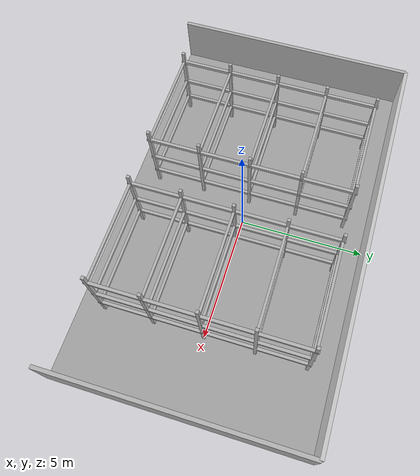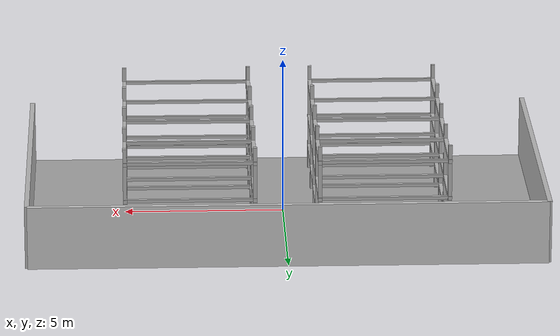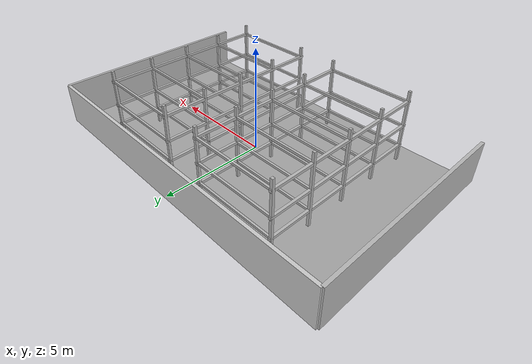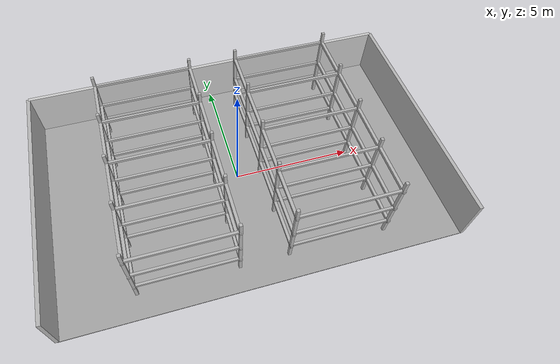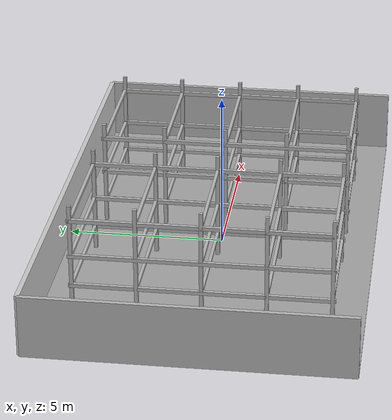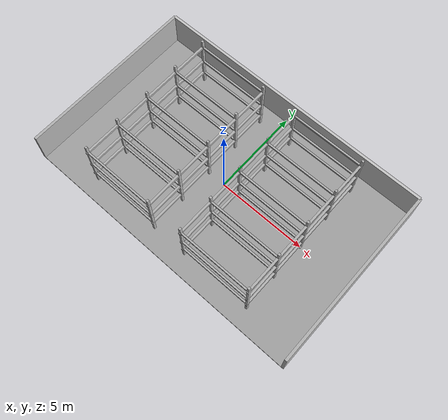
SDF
<?xml version="1.0"?>
<sdf version="1.10">
  <world name="warehouse_world">

    <!-- Lighting -->
    <light name="sun" type="directional">
      <pose>0 0 10 0 0 0</pose>
      <diffuse>0.8 0.8 0.8 1</diffuse>
      <specular>0.2 0.2 0.2 1</specular>
      <direction>-0.5 0.1 -0.9</direction>
    </light>

    <!-- Warehouse floor -->
    <model name="warehouse_floor">
      <static>true</static>
      <link name="floor_link">
        <collision name="floor_collision">
          <geometry>
            <box>
              <size>16 10 0.05</size>
            </box>
          </geometry>
        </collision>
        <visual name="floor_visual">
          <geometry>
            <box>
              <size>16 10 0.05</size>
            </box>
          </geometry>
          <material>
            <ambient>0.65 0.65 0.65 1</ambient>
            <diffuse>0.65 0.65 0.65 1</diffuse>
          </material>
        </visual>
      </link>
    </model>

    <!-- Back wall -->
    <model name="back_wall">
      <static>true</static>
      <pose>0 5 1 0 0 0</pose>
      <link name="wall_link">
        <collision name="wall_collision">
          <geometry>
            <box>
              <size>16 0.15 2</size>
            </box>
          </geometry>
        </collision>
        <visual name="wall_visual">
          <geometry>
            <box>
              <size>16 0.15 2</size>
            </box>
          </geometry>
          <material>
            <ambient>0.8 0.8 0.8 1</ambient>
            <diffuse>0.8 0.8 0.8 1</diffuse>
          </material>
        </visual>
      </link>
    </model>

    <!-- Left wall -->
    <model name="left_wall">
      <static>true</static>
      <pose>-8 0 1 0 0 0</pose>
      <link name="wall_link">
        <collision name="wall_collision">
          <geometry>
            <box>
              <size>0.15 10 2</size>
            </box>
          </geometry>
        </collision>
        <visual name="wall_visual">
          <geometry>
            <box>
              <size>0.15 10 2</size>
            </box>
          </geometry>
        </visual>
      </link>
    </model>

    <!-- Right wall -->
    <model name="right_wall">
      <static>true</static>
      <pose>8 0 1 0 0 0</pose>
      <link name="wall_link">
        <collision name="wall_collision">
          <geometry>
            <box>
              <size>0.15 10 2</size>
            </box>
          </geometry>
        </collision>
        <visual name="wall_visual">
          <geometry>
            <box>
              <size>0.15 10 2</size>
            </box>
          </geometry>
        </visual>
      </link>
    </model>

    <!-- Long warehouse rack row 1 -->
<model name="long_rack_left">
  <static>true</static>
  <pose>-3 0 0 0 0 0</pose>

  <link name="rack_link">

    <!-- Vertical posts along length -->
    <visual name="post_1_front"><pose>-2 -4 1.75 0 0 0</pose><geometry><box><size>0.12 0.12 3.5</size></box></geometry></visual>
    <visual name="post_2_front"><pose>-2 -2 1.75 0 0 0</pose><geometry><box><size>0.12 0.12 3.5</size></box></geometry></visual>
    <visual name="post_3_front"><pose>-2 0 1.75 0 0 0</pose><geometry><box><size>0.12 0.12 3.5</size></box></geometry></visual>
    <visual name="post_4_front"><pose>-2 2 1.75 0 0 0</pose><geometry><box><size>0.12 0.12 3.5</size></box></geometry></visual>
    <visual name="post_5_front"><pose>-2 4 1.75 0 0 0</pose><geometry><box><size>0.12 0.12 3.5</size></box></geometry></visual>

    <visual name="post_1_back"><pose>2 -4 1.75 0 0 0</pose><geometry><box><size>0.12 0.12 3.5</size></box></geometry></visual>
    <visual name="post_2_back"><pose>2 -2 1.75 0 0 0</pose><geometry><box><size>0.12 0.12 3.5</size></box></geometry></visual>
    <visual name="post_3_back"><pose>2 0 1.75 0 0 0</pose><geometry><box><size>0.12 0.12 3.5</size></box></geometry></visual>
    <visual name="post_4_back"><pose>2 2 1.75 0 0 0</pose><geometry><box><size>0.12 0.12 3.5</size></box></geometry></visual>
    <visual name="post_5_back"><pose>2 4 1.75 0 0 0</pose><geometry><box><size>0.12 0.12 3.5</size></box></geometry></visual>

    <!-- Horizontal beams along rack length -->
    <visual name="left_beam_low"><pose>-2 0 0.8 0 0 0</pose><geometry><box><size>0.12 8.2 0.12</size></box></geometry></visual>
    <visual name="left_beam_mid"><pose>-2 0 1.8 0 0 0</pose><geometry><box><size>0.12 8.2 0.12</size></box></geometry></visual>
    <visual name="left_beam_top"><pose>-2 0 3.0 0 0 0</pose><geometry><box><size>0.12 8.2 0.12</size></box></geometry></visual>

    <visual name="right_beam_low"><pose>2 0 0.8 0 0 0</pose><geometry><box><size>0.12 8.2 0.12</size></box></geometry></visual>
    <visual name="right_beam_mid"><pose>2 0 1.8 0 0 0</pose><geometry><box><size>0.12 8.2 0.12</size></box></geometry></visual>
    <visual name="right_beam_top"><pose>2 0 3.0 0 0 0</pose><geometry><box><size>0.12 8.2 0.12</size></box></geometry></visual>

    <!-- Cross beams across rack width -->
    <visual name="cross_low_1"><pose>0 -4 0.8 0 0 0</pose><geometry><box><size>4.1 0.10 0.10</size></box></geometry></visual>
    <visual name="cross_low_2"><pose>0 -2 0.8 0 0 0</pose><geometry><box><size>4.1 0.10 0.10</size></box></geometry></visual>
    <visual name="cross_low_3"><pose>0 0 0.8 0 0 0</pose><geometry><box><size>4.1 0.10 0.10</size></box></geometry></visual>
    <visual name="cross_low_4"><pose>0 2 0.8 0 0 0</pose><geometry><box><size>4.1 0.10 0.10</size></box></geometry></visual>
    <visual name="cross_low_5"><pose>0 4 0.8 0 0 0</pose><geometry><box><size>4.1 0.10 0.10</size></box></geometry></visual>

    <visual name="cross_mid_1"><pose>0 -4 1.8 0 0 0</pose><geometry><box><size>4.1 0.10 0.10</size></box></geometry></visual>
    <visual name="cross_mid_2"><pose>0 -2 1.8 0 0 0</pose><geometry><box><size>4.1 0.10 0.10</size></box></geometry></visual>
    <visual name="cross_mid_3"><pose>0 0 1.8 0 0 0</pose><geometry><box><size>4.1 0.10 0.10</size></box></geometry></visual>
    <visual name="cross_mid_4"><pose>0 2 1.8 0 0 0</pose><geometry><box><size>4.1 0.10 0.10</size></box></geometry></visual>
    <visual name="cross_mid_5"><pose>0 4 1.8 0 0 0</pose><geometry><box><size>4.1 0.10 0.10</size></box></geometry></visual>

    <visual name="cross_top_1"><pose>0 -4 3.0 0 0 0</pose><geometry><box><size>4.1 0.10 0.10</size></box></geometry></visual>
    <visual name="cross_top_2"><pose>0 -2 3.0 0 0 0</pose><geometry><box><size>4.1 0.10 0.10</size></box></geometry></visual>
    <visual name="cross_top_3"><pose>0 0 3.0 0 0 0</pose><geometry><box><size>4.1 0.10 0.10</size></box></geometry></visual>
    <visual name="cross_top_4"><pose>0 2 3.0 0 0 0</pose><geometry><box><size>4.1 0.10 0.10</size></box></geometry></visual>
    <visual name="cross_top_5"><pose>0 4 3.0 0 0 0</pose><geometry><box><size>4.1 0.10 0.10</size></box></geometry></visual>

    <collision name="rack_collision">
      <pose>0 0 1.75 0 0 0</pose>
      <geometry>
        <box>
          <size>4.3 8.4 3.5</size>
        </box>
      </geometry>
    </collision>

  </link>
</model>

<!-- Long warehouse rack row 2: identical parallel rack -->
<model name="long_rack_right">
  <static>true</static>
  <pose>3 0 0 0 0 0</pose>

  <link name="rack_link">

    <!-- Vertical posts along length -->
    <visual name="post_1_front"><pose>-2 -4 1.75 0 0 0</pose><geometry><box><size>0.12 0.12 3.5</size></box></geometry></visual>
    <visual name="post_2_front"><pose>-2 -2 1.75 0 0 0</pose><geometry><box><size>0.12 0.12 3.5</size></box></geometry></visual>
    <visual name="post_3_front"><pose>-2 0 1.75 0 0 0</pose><geometry><box><size>0.12 0.12 3.5</size></box></geometry></visual>
    <visual name="post_4_front"><pose>-2 2 1.75 0 0 0</pose><geometry><box><size>0.12 0.12 3.5</size></box></geometry></visual>
    <visual name="post_5_front"><pose>-2 4 1.75 0 0 0</pose><geometry><box><size>0.12 0.12 3.5</size></box></geometry></visual>

    <visual name="post_1_back"><pose>2 -4 1.75 0 0 0</pose><geometry><box><size>0.12 0.12 3.5</size></box></geometry></visual>
    <visual name="post_2_back"><pose>2 -2 1.75 0 0 0</pose><geometry><box><size>0.12 0.12 3.5</size></box></geometry></visual>
    <visual name="post_3_back"><pose>2 0 1.75 0 0 0</pose><geometry><box><size>0.12 0.12 3.5</size></box></geometry></visual>
    <visual name="post_4_back"><pose>2 2 1.75 0 0 0</pose><geometry><box><size>0.12 0.12 3.5</size></box></geometry></visual>
    <visual name="post_5_back"><pose>2 4 1.75 0 0 0</pose><geometry><box><size>0.12 0.12 3.5</size></box></geometry></visual>

    <!-- Horizontal beams along rack length -->
    <visual name="left_beam_low"><pose>-2 0 0.8 0 0 0</pose><geometry><box><size>0.12 8.2 0.12</size></box></geometry></visual>
    <visual name="left_beam_mid"><pose>-2 0 1.8 0 0 0</pose><geometry><box><size>0.12 8.2 0.12</size></box></geometry></visual>
    <visual name="left_beam_top"><pose>-2 0 3.0 0 0 0</pose><geometry><box><size>0.12 8.2 0.12</size></box></geometry></visual>

    <visual name="right_beam_low"><pose>2 0 0.8 0 0 0</pose><geometry><box><size>0.12 8.2 0.12</size></box></geometry></visual>
    <visual name="right_beam_mid"><pose>2 0 1.8 0 0 0</pose><geometry><box><size>0.12 8.2 0.12</size></box></geometry></visual>
    <visual name="right_beam_top"><pose>2 0 3.0 0 0 0</pose><geometry><box><size>0.12 8.2 0.12</size></box></geometry></visual>

    <!-- Cross beams across rack width -->
    <visual name="cross_low_1"><pose>0 -4 0.8 0 0 0</pose><geometry><box><size>4.1 0.10 0.10</size></box></geometry></visual>
    <visual name="cross_low_2"><pose>0 -2 0.8 0 0 0</pose><geometry><box><size>4.1 0.10 0.10</size></box></geometry></visual>
    <visual name="cross_low_3"><pose>0 0 0.8 0 0 0</pose><geometry><box><size>4.1 0.10 0.10</size></box></geometry></visual>
    <visual name="cross_low_4"><pose>0 2 0.8 0 0 0</pose><geometry><box><size>4.1 0.10 0.10</size></box></geometry></visual>
    <visual name="cross_low_5"><pose>0 4 0.8 0 0 0</pose><geometry><box><size>4.1 0.10 0.10</size></box></geometry></visual>

    <visual name="cross_mid_1"><pose>0 -4 1.8 0 0 0</pose><geometry><box><size>4.1 0.10 0.10</size></box></geometry></visual>
    <visual name="cross_mid_2"><pose>0 -2 1.8 0 0 0</pose><geometry><box><size>4.1 0.10 0.10</size></box></geometry></visual>
    <visual name="cross_mid_3"><pose>0 0 1.8 0 0 0</pose><geometry><box><size>4.1 0.10 0.10</size></box></geometry></visual>
    <visual name="cross_mid_4"><pose>0 2 1.8 0 0 0</pose><geometry><box><size>4.1 0.10 0.10</size></box></geometry></visual>
    <visual name="cross_mid_5"><pose>0 4 1.8 0 0 0</pose><geometry><box><size>4.1 0.10 0.10</size></box></geometry></visual>

    <visual name="cross_top_1"><pose>0 -4 3.0 0 0 0</pose><geometry><box><size>4.1 0.10 0.10</size></box></geometry></visual>
    <visual name="cross_top_2"><pose>0 -2 3.0 0 0 0</pose><geometry><box><size>4.1 0.10 0.10</size></box></geometry></visual>
    <visual name="cross_top_3"><pose>0 0 3.0 0 0 0</pose><geometry><box><size>4.1 0.10 0.10</size></box></geometry></visual>
    <visual name="cross_top_4"><pose>0 2 3.0 0 0 0</pose><geometry><box><size>4.1 0.10 0.10</size></box></geometry></visual>
    <visual name="cross_top_5"><pose>0 4 3.0 0 0 0</pose><geometry><box><size>4.1 0.10 0.10</size></box></geometry></visual>

    <collision name="rack_collision">
      <pose>0 0 1.75 0 0 0</pose>
      <geometry>
        <box>
          <size>4.3 8.4 3.5</size>
        </box>
      </geometry>
    </collision>

  </link>
</model>

    <!-- Visible yellow centerline strip down the aisle -->
    <model name="aisle_centerline_yellow">
      <static>true</static>
      <pose>0 0 0.012 0 0 0</pose>
      <link name="centerline_link">
        <visual name="centerline_visual">
          <geometry>
            <box>
              <size>0.08 8.6 0.01</size>
            </box>
          </geometry>
          <material>
            <ambient>1.0 1.0 0.0 1</ambient>
            <diffuse>1.0 1.0 0.0 1</diffuse>
            <specular>0.1 0.1 0.1 1</specular>
          </material>
        </visual>
      </link>
    </model>

  </world>
</sdf>
